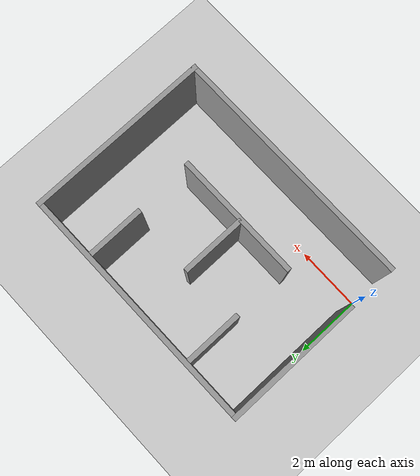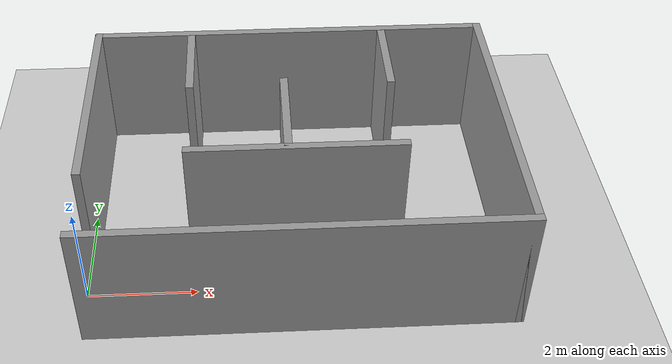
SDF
<sdf version="1.6">
 <world name="default">
  <light name="sun" type="directional">
   <pose>0 0 10 0 -0 0</pose>
   <diffuse>0.8 0.8 0.8 1</diffuse>
   <specular>0.2 0.2 0.2 1</specular>
   <attenuation>
    <range>1000</range>
    <constant>0.9</constant>
    <linear>0.01</linear>
    <quadratic>0.001</quadratic>
   </attenuation>
   <direction>-0.5 0.1 -0.9</direction>
  </light>
  <model name="ground_plane">
   <static>1</static>
   <link name="link">
    <collision name="collision">
     <geometry><plane><normal>0 0 1</normal><size>100 100</size></plane></geometry>
     <surface>
      <contact><collide_bitmask>65535</collide_bitmask></contact>
      <friction><ode><mu>100</mu><mu2>50</mu2></ode></friction>
     </surface>
    </collision>
    <visual name="visual">
     <cast_shadows>0</cast_shadows>
     <geometry><plane><normal>0 0 1</normal><size>100 100</size></plane></geometry>
     <material>
      <script><uri>file://media/materials/scripts/gazebo.material</uri><name>Gazebo/Grey</name></script>
     </material>
    </visual>
   </link>
  </model>
  <gravity>0 0 -9.8</gravity>
  <magnetic_field>6e-06 2.3e-05 -4.2e-05</magnetic_field>
  <atmosphere type="adiabatic"/>
  <physics name="default_physics" default="0" type="ode">
   <max_step_size>0.001</max_step_size>
   <real_time_factor>1</real_time_factor>
   <real_time_update_rate>1000</real_time_update_rate>
  </physics>
  <scene><ambient>0.4 0.4 0.4 1</ambient><background>0.7 0.7 0.7 1</background><shadows>1</shadows></scene>
  <audio><device>default</device></audio>
  <spherical_coordinates>
   <surface_model>EARTH_WGS84</surface_model>
   <latitude_deg>0</latitude_deg>
   <longitude_deg>0</longitude_deg>
   <elevation>0</elevation>
   <heading_deg>0</heading_deg>
  </spherical_coordinates>
  <model name="test_maze">
   <pose>3.8794 1.88079 0 0 -0 0</pose>
   <link name="Wall_1">
    <collision name="Wall_1_Collision">
     <geometry><box><size>7.75 0.15 2.5</size></box></geometry>
     <pose>0 0 1.25 0 -0 0</pose>
    </collision>
    <visual name="Wall_1_Visual">
     <pose>0 0 1.25 0 -0 0</pose>
     <geometry><box><size>7.75 0.15 2.5</size></box></geometry>
     <material>
      <script><uri>file://media/materials/scripts/gazebo.material</uri><name>Gazebo/Grey</name></script>
      <ambient>1 1 1 1</ambient>
     </material>
     <meta><layer>0</layer></meta>
    </visual>
    <pose>0 -2.8 0 0 -0 0</pose>
   </link>
   <link name="Wall_13">
    <collision name="Wall_13_Collision">
     <geometry><box><size>1.75 0.15 2.5</size></box></geometry>
     <pose>0 0 1.25 0 -0 0</pose>
    </collision>
    <visual name="Wall_13_Visual">
     <pose>0 0 1.25 0 -0 0</pose>
     <geometry><box><size>1.75 0.15 2.5</size></box></geometry>
     <material>
      <script><uri>file://media/materials/scripts/gazebo.material</uri><name>Gazebo/Grey</name></script>
      <ambient>1 1 1 1</ambient>
     </material>
     <meta><layer>0</layer></meta>
    </visual>
    <pose>1.84159 1.84882 0 0 -0 -1.5708</pose>
   </link>
   <link name="Wall_15">
    <collision name="Wall_15_Collision">
     <geometry><box><size>4 0.15 2.5</size></box></geometry>
     <pose>0 0 1.25 0 -0 0</pose>
    </collision>
    <visual name="Wall_15_Visual">
     <pose>0 0 1.25 0 -0 0</pose>
     <geometry><box><size>4 0.15 2.5</size></box></geometry>
     <material>
      <script><uri>file://media/materials/scripts/gazebo.material</uri><name>Gazebo/Grey</name></script>
      <ambient>1 1 1 1</ambient>
     </material>
     <meta><layer>0</layer></meta>
    </visual>
    <pose>-0.026602 -0.807875 0 0 -0 0</pose>
   </link>
   <link name="Wall_2">
    <collision name="Wall_2_Collision">
     <geometry><box><size>5.75 0.15 2.5</size></box></geometry>
     <pose>0 0 1.25 0 -0 0</pose>
    </collision>
    <visual name="Wall_2_Visual">
     <pose>0 0 1.25 0 -0 0</pose>
     <geometry><box><size>5.75 0.15 2.5</size></box></geometry>
     <material>
      <script><uri>file://media/materials/scripts/gazebo.material</uri><name>Gazebo/Grey</name></script>
      <ambient>1 1 1 1</ambient>
     </material>
     <meta><layer>0</layer></meta>
    </visual>
    <pose>3.8 0 0 0 -0 1.5708</pose>
   </link>
   <link name="Wall_3">
    <collision name="Wall_3_Collision">
     <geometry><box><size>7.75 0.15 2.5</size></box></geometry>
     <pose>0 0 1.25 0 -0 0</pose>
    </collision>
    <visual name="Wall_3_Visual">
     <pose>0 0 1.25 0 -0 0</pose>
     <geometry><box><size>7.75 0.15 2.5</size></box></geometry>
     <material>
      <script><uri>file://media/materials/scripts/gazebo.material</uri><name>Gazebo/Grey</name></script>
      <ambient>1 1 1 1</ambient>
     </material>
     <meta><layer>0</layer></meta>
    </visual>
    <pose>0 2.8 0 0 -0 3.14159</pose>
   </link>
   <link name="Wall_4">
    <collision name="Wall_4_Collision">
     <geometry><box><size>4.25 0.15 2.5</size></box></geometry>
     <pose>0 0 1.25 0 -0 0</pose>
    </collision>
    <visual name="Wall_4_Visual">
     <pose>0 0 1.25 0 -0 0</pose>
     <geometry><box><size>4.25 0.15 2.5</size></box></geometry>
     <material>
      <script><uri>file://media/materials/scripts/gazebo.material</uri><name>Gazebo/Grey</name></script>
      <ambient>1 1 1 1</ambient>
     </material>
     <meta><layer>0</layer></meta>
    </visual>
    <pose>-3.8 0.75 0 0 -0 -1.5708</pose>
   </link>
   <link name="Wall_6">
    <collision name="Wall_6_Collision">
     <geometry><box><size>1.75 0.15 2.5</size></box></geometry>
     <pose>0 0 1.25 0 -0 0</pose>
    </collision>
    <visual name="Wall_6_Visual">
     <pose>0 0 1.25 0 -0 0</pose>
     <geometry><box><size>1.75 0.15 2.5</size></box></geometry>
     <material>
      <script><uri>file://media/materials/scripts/gazebo.material</uri><name>Gazebo/Grey</name></script>
      <ambient>1 1 1 1</ambient>
     </material>
     <meta><layer>0</layer></meta>
    </visual>
    <pose>-1.9516 1.84882 0 0 -0 -1.5708</pose>
   </link>
   <link name="Wall_8">
    <collision name="Wall_8_Collision">
     <geometry><box><size>2 0.15 2.5</size></box></geometry>
     <pose>0 0 1.25 0 -0 0</pose>
    </collision>
    <visual name="Wall_8_Visual">
     <pose>0 0 1.25 0 -0 0</pose>
     <geometry><box><size>2 0.15 2.5</size></box></geometry>
     <material>
      <script><uri>file://media/materials/scripts/gazebo.material</uri><name>Gazebo/Grey</name></script>
      <ambient>1 1 1 1</ambient>
     </material>
     <meta><layer>0</layer></meta>
    </visual>
    <pose>-0.177369 0.194309 0 0 -0 -1.5708</pose>
   </link>
   <static>1</static>
  </model>
 </world>
</sdf>
